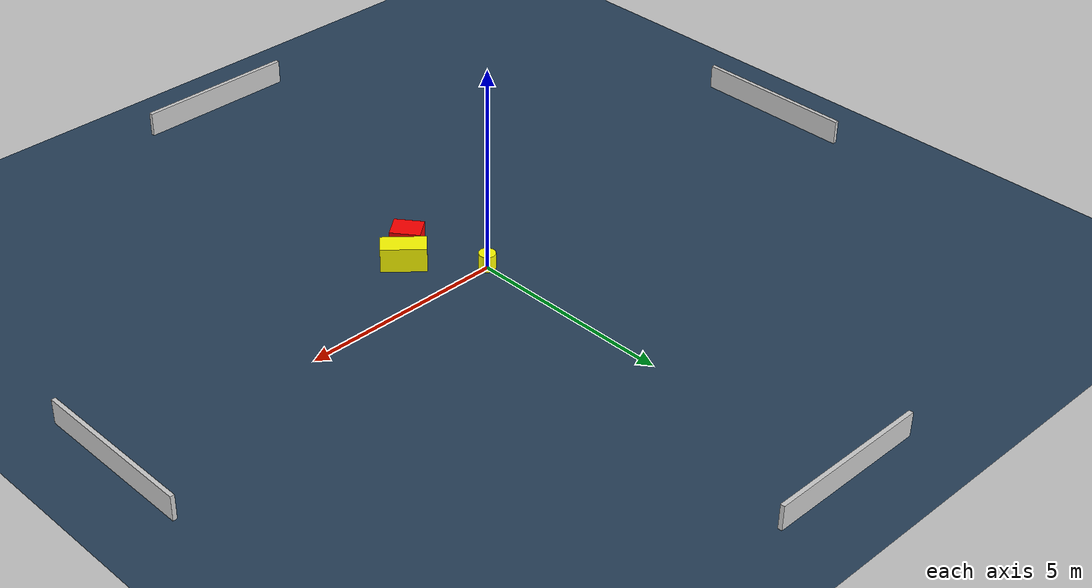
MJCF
<?xml version="1.0" ?>
<mujoco model="generated_environment">
  <option timestep="0.01" integrator="RK4" cone="elliptic"/>
  <default>
    <geom density="1"/>
  </default>
  <asset>
    <texture builtin="gradient" height="3072" name="skybox" rgb1="0.3 0.5 0.7" rgb2="0 0 0" type="skybox" width="512"/>
    <texture builtin="checker" height="300" name="groundplane" rgb1="0.2 0.3 0.4" rgb2="0.1 0.2 0.3" type="2d" width="300"/>
    <material name="groundplane" reflectance="0.2" texrepeat="5 5" texture="groundplane"/>
  </asset>
  <worldbody>
    <light dir="0 0 -1" directional="true" pos="0 0 1.5"/>
    <geom condim="3" friction="0.5 0.005 0.001" material="groundplane" name="floor" pos="0 0 0" size="0 0 0.05" type="plane"/>
    <body name="walls">
      <geom name="wall_1" condim="4" pos="-10.0 0.0 0.3" rgba="0.800000011920929 0.800000011920929 0.800000011920929 1.0" size="0.05 2.0 0.3" type="box"/>
      <geom name="wall_2" condim="4" pos="10.0 0.0 0.3" rgba="0.800000011920929 0.800000011920929 0.800000011920929 1.0" size="0.05 2.0 0.3" type="box"/>
      <geom name="wall_3" condim="4" pos="0.0 -10.0 0.3" rgba="0.800000011920929 0.800000011920929 0.800000011920929 1.0" size="2.0 0.05 0.3" type="box"/>
      <geom name="wall_4" condim="4" pos="0.0 10.0 0.3" rgba="0.800000011920929 0.800000011920929 0.800000011920929 1.0" size="2.0 0.05 0.3" type="box"/>
    </body>
    <body name="robot">
      <joint name="joint_x" type="slide" pos="0 0 0" axis="1 0 0"/>
      <joint name="joint_y" type="slide" pos="0 0 0" axis="0 1 0"/>
      <geom name="robot" type="cylinder" pos="0.0 0.0 0.2" size="0.2 0.2 0.0" mass="5.0" friction="1.0 0.005 0.0001" condim="4" rgba="1.0 1.0 0.0 1.0"/>
    </body>
    <body name="obstacle_1_movable">
      <geom name="obstacle_1_movable" condim="4" pos="1.2882102875436876 -1.3548777569199273 0.3" euler="0 0 318.49254287307144" friction="0.0 0.005 0.001" rgba="1.0 1.0 0.0 1.0" size="0.5267042330918148 0.26156681120327097 0.3" type="box" mass="0.1"/>
      <joint type="free"/>
    </body>
    <body name="obstacle_2_static">
      <geom name="obstacle_2_static" condim="4" pos="0.7969642417313859 -1.7865652854644858 0.3" euler="0 0 37.33016912998997" friction="0.0 0.005 0.001" rgba="1.0 0.0 0.0 1.0" size="0.29065913101872487 0.35702273472729273 0.3" type="box"/>
    </body>
  </worldbody>
  <actuator>
    <motor name="actuator_x" joint="joint_x" gear="1" ctrlrange="-1 1"/>
    <motor name="actuator_y" joint="joint_y" gear="1" ctrlrange="-1 1"/>
  </actuator>
</mujoco>
